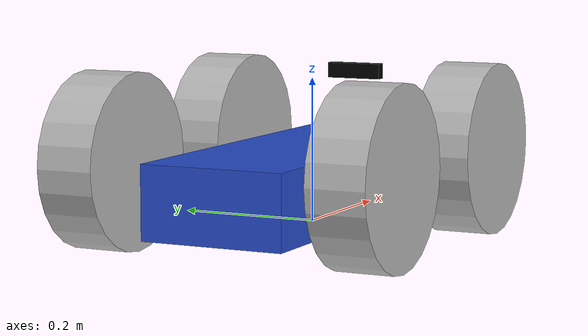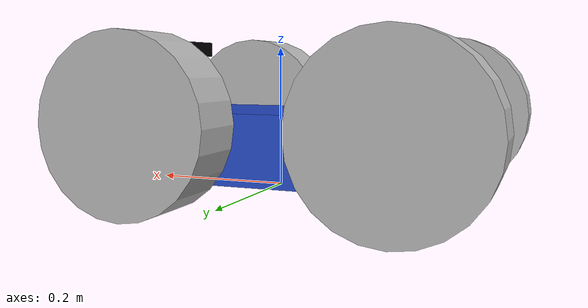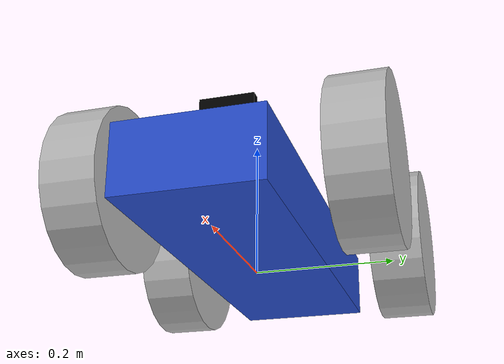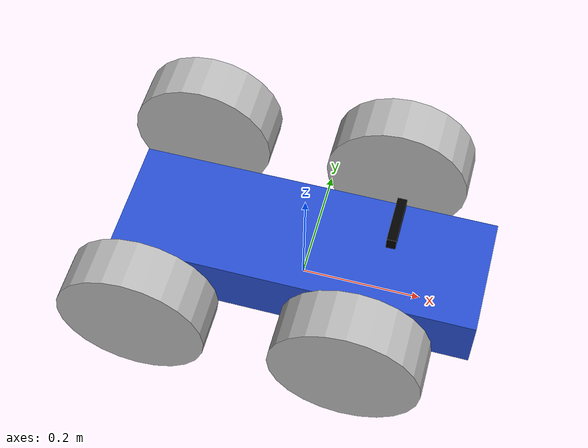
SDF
<?xml version='1.0'?>
<sdf version='1.4'>
  <model name="robot">
     <!-- If true, physics engine will ignore -->
     <static>false</static>

       <!-- Add the rectangular base of the robot -->
       <link name='chassis'>

         <!--Position of the center will be: -->
         <!--x=0 meters, y=0 meters, z=0.1 meters-->
         <!--Orientation of the center will be: -->
         <!--Roll=0 rad, Pitch=0 rad, Yaw=0 rad -->
         <pose>0 0 .04 0 0 0</pose>

           <!-- Specify the shape for collisions -->
           <collision name='collision'>
             <geometry>
               <box>
                 <!-- Box is 0.6 meters in length -->
                 <!-- 0.2 meters in width -->
                 <!-- 0.4 meters in height -->
                 <size>.6 .2 .1</size>
               </box>
             </geometry>
           </collision>

           <!-- Specify the shape for visualization -->
           <visual name='visual'>
             <pose> 0 0 0.02 0 0 0 </pose>
             <material>
            <script>
                <uri>file://media/materials/scripts/gazebo.material</uri>
                <name>Gazebo/Blue</name>
            </script>
            </material>
             <geometry>
                 <box>
                    <size>.6 .2 .1</size>
                </box>
             </geometry>
           </visual>
       </link>

       <!-- Add the left wheel -->
       <link name="left_wheel">
         <pose>0.12 0.19 0.1 0 1.5707 1.5707</pose>
         <collision name="collision">
           <geometry>
             <cylinder>
               <radius>.12</radius>
               <length>.08</length>
             </cylinder>
           </geometry>
         </collision>
         <visual name="visual">
           <geometry>
             <cylinder>
               <radius>.12</radius>
               <length>.08</length>
             </cylinder>
           </geometry>
         </visual>
       </link>

       <!-- Add the right wheel -->
       <link name="right_wheel">
         <pose>0.12 -0.19 0.1 0 1.5707 1.5707</pose>
         <collision name="collision">
           <geometry>
             <cylinder>
               <radius>.12</radius>
               <length>.08</length>
             </cylinder>
           </geometry>
         </collision>
         <visual name="visual">
           <geometry>
             <cylinder>
               <radius>.12</radius>
               <length>.08</length>
             </cylinder>
           </geometry>
         </visual>
       </link>

       <!-- Add the BACK left wheel -->
       <link name="left_wheel_back">
         <pose>-0.22 0.19 0.1 0 1.5707 1.5707</pose>
         <collision name="collision">
           <geometry>
             <cylinder>
               <radius>.12</radius>
               <length>.08</length>
             </cylinder>
           </geometry>
         </collision>
         <visual name="visual">
           <geometry>
             <cylinder>
               <radius>.12</radius>
               <length>.08</length>
             </cylinder>
           </geometry>
         </visual>
       </link>

       <!-- Add the BACK right wheel -->
       <link name="right_wheel_back">
         <pose>-0.22 -0.19 0.1 0 1.5707 1.5707</pose>
         <collision name="collision">
           <geometry>
             <cylinder>
               <radius>.12</radius>
               <length>.08</length>
             </cylinder>
           </geometry>
         </collision>
         <visual name="visual">
           <geometry>
             <cylinder>
               <radius>.12</radius>
               <length>.08</length>
             </cylinder>
           </geometry>
         </visual>
       </link>

        <!-- *********************** DEPTH CAMERA ******************************  -->
        <!-- The depth camera (e.g. Intel Realsense camera). -->
        <link name="camera_depth_frame">
          <pose>0.15 0 0.2 0 0 0</pose>
        </link>

        <link name="camera_link">
          <pose>0.15 0 0.2 0 0 0</pose>

          <visual name="camera_visual">
            <pose>-0.005 0 0 0 0 0</pose>
            <geometry>
              <box>
                <size>0.015 0.08 0.022</size>
              </box>
            </geometry>
            <material>
              <ambient>0 0 0 1.0</ambient>
              <diffuse>0 0 0 1.0</diffuse>
              <specular>0.0 0.0 0.0 1.0</specular>
              <emissive>0.0 0.0 0.0 1.0</emissive>
            </material>
          </visual>

          <sensor name="depth_camera" type="camera">
            <always_on>true</always_on>
            <visualize>false</visualize>
            <update_rate>5</update_rate>
            <camera name="camera">
              <horizontal_fov>1.02974</horizontal_fov>
              <image>
                <width>640</width>
                <height>480</height>
                <format>R8G8B8</format>
              </image>
              <clip>
                <near>0.02</near>
                <far>10</far>
              </clip>
              <noise>
                <type>gaussian</type>
                <mean>0.0</mean>
                <stddev>0.007</stddev>
              </noise>
            </camera>
            <plugin name="depth_camera_controller" filename="libgazebo_ros_camera.so">
              <camera_name>depth_camera</camera_name>
              <imageTopicName>image_raw</imageTopicName>
              <frame_name>camera_depth_frame</frame_name>
              <hack_baseline>0</hack_baseline>
              <min_depth>0.001</min_depth>
            </plugin>
          </sensor>
        </link>

       <!-- Add motor for the left wheel -->
       <joint type="revolute" name="left_wheel_hinge">
         <pose>0 0 -0.03 0 0 0</pose>
         <child>left_wheel</child>
         <parent>chassis</parent>
         <axis>
           <xyz>0 1 0</xyz>
         </axis>
       </joint>

       <!-- Add motor for the right wheel -->
       <joint type="revolute" name="right_wheel_hinge">
         <pose>0 0 0.03 0 0 0</pose>
         <child>right_wheel</child>
         <parent>chassis</parent>
         <axis>
           <xyz>0 1 0</xyz>
         </axis>
       </joint>

       <!-- Add motor for the back left wheel -->
       <joint type="fixed" name="left_back_wheel_hinge">
         <pose>0 0 0 0 0 0</pose>
         <child>left_wheel_back</child>
         <parent>chassis</parent>
         <axis>
           <xyz>0 1 0</xyz>
         </axis>
       </joint>

       <!-- Add motor for the back right wheel -->
       <joint type="fixed" name="right_back_wheel_hinge">
         <pose>0 0 0 0 0 0</pose>
         <child>right_wheel_back</child>
         <parent>chassis</parent>
         <axis>
           <xyz>0 1 0</xyz>
         </axis>
       </joint>

       <!-- Controls the differential drive robot -->
       <plugin name='diff_drive' filename='libgazebo_ros_diff_drive.so'>
         <ros>
           <namespace>/demo</namespace>
           <remapping>cmd_vel:=cmd_vel</remapping>
           <remapping>odom:=odom</remapping>
         </ros>

         <!-- wheels -->
         <left_joint>left_wheel_hinge</left_joint>
         <right_joint>right_wheel_hinge</right_joint>

         <!-- kinematics -->
         <wheel_separation>0.26</wheel_separation>
         <wheel_diameter>0.2</wheel_diameter>

         <!-- limits -->
         <max_wheel_torque>20</max_wheel_torque>
         <max_wheel_acceleration>1.0</max_wheel_acceleration>

         <!-- output -->
         <publish_odom>true</publish_odom>
         <publish_odom_tf>true</publish_odom_tf>
         <publish_wheel_tf>true</publish_wheel_tf>

         <odometry_frame>odom</odometry_frame>
         <robot_base_frame>chassis</robot_base_frame>
       </plugin>
  </model>
</sdf>
